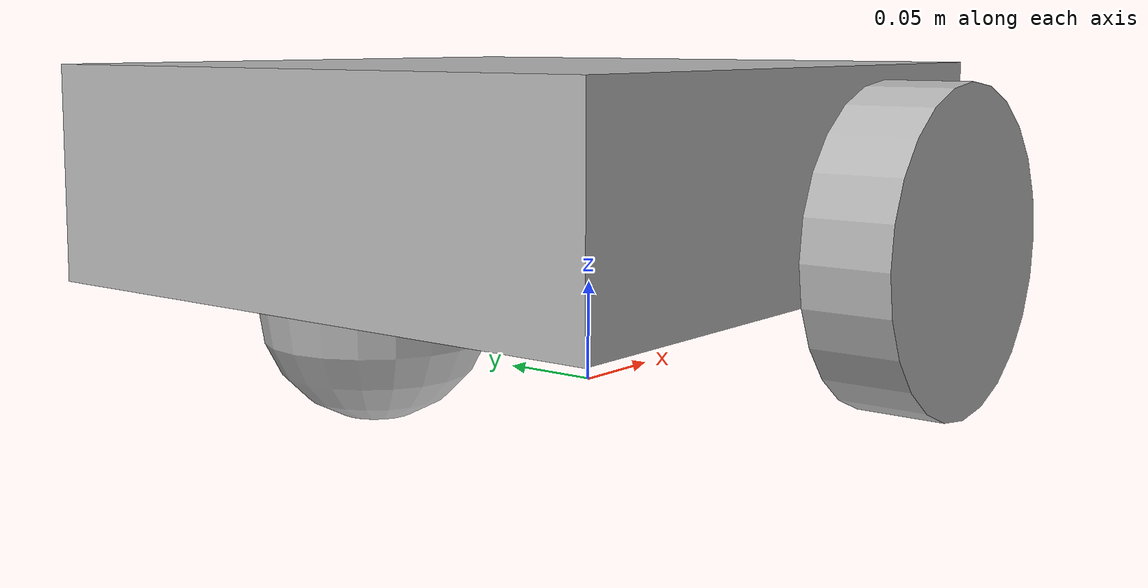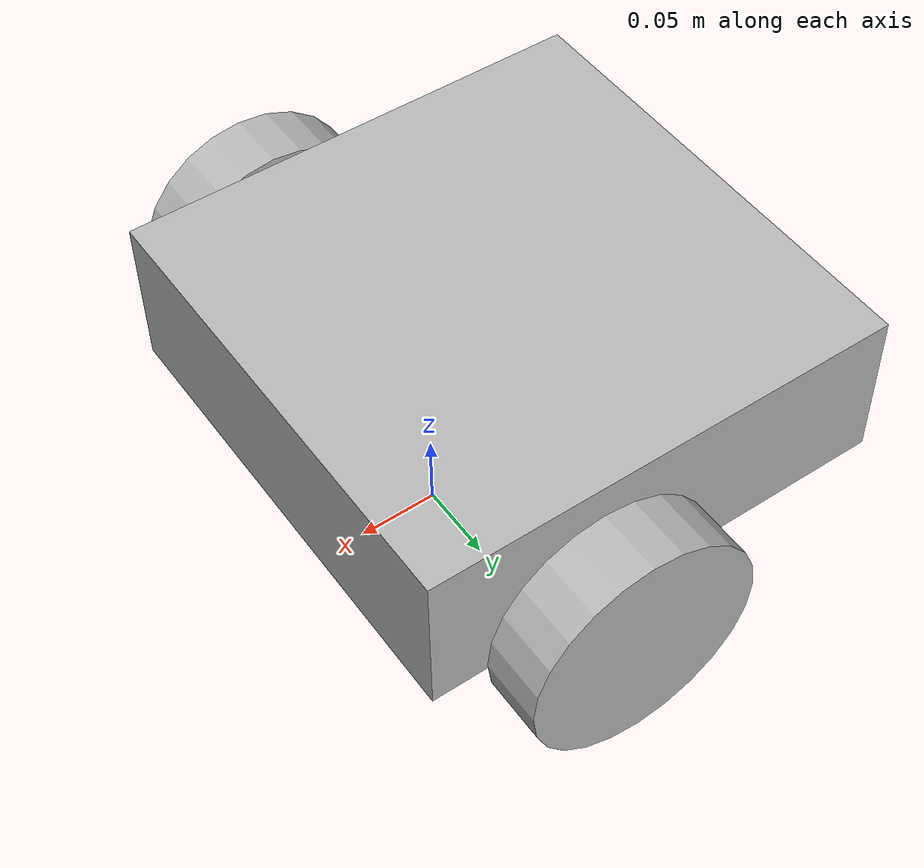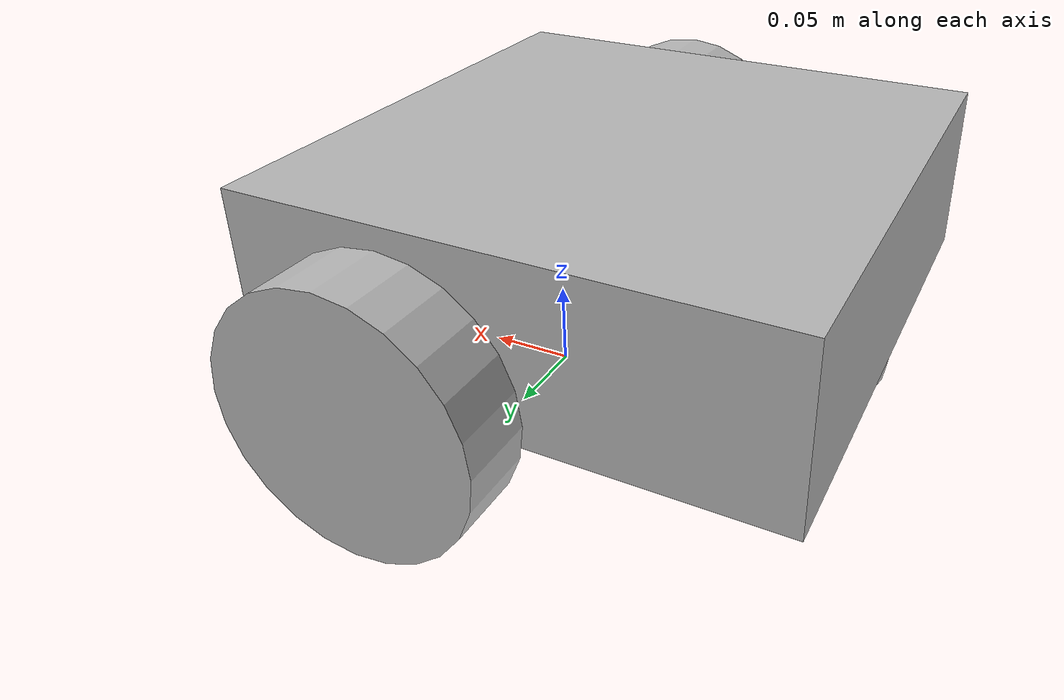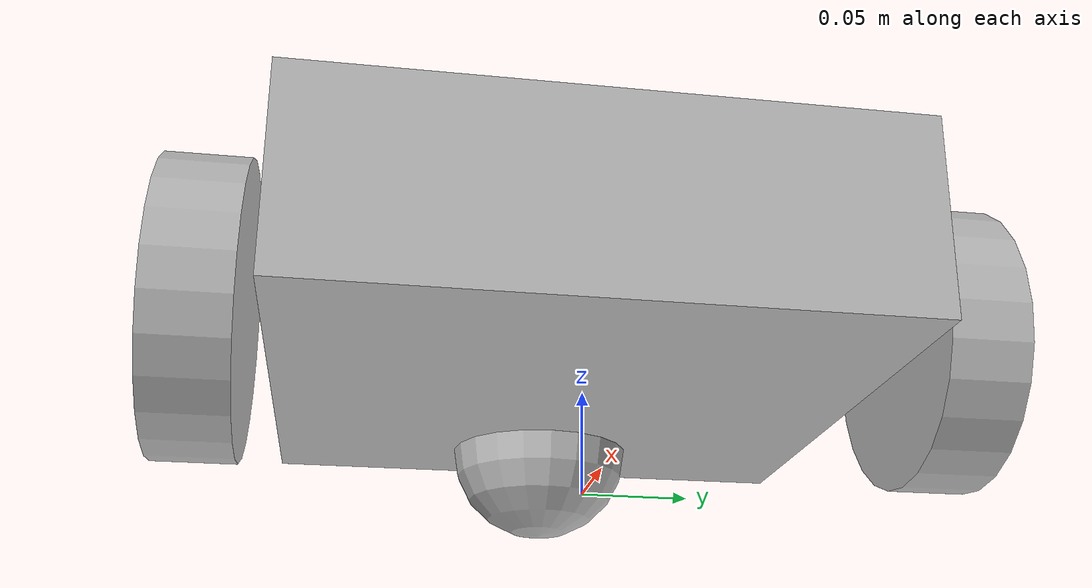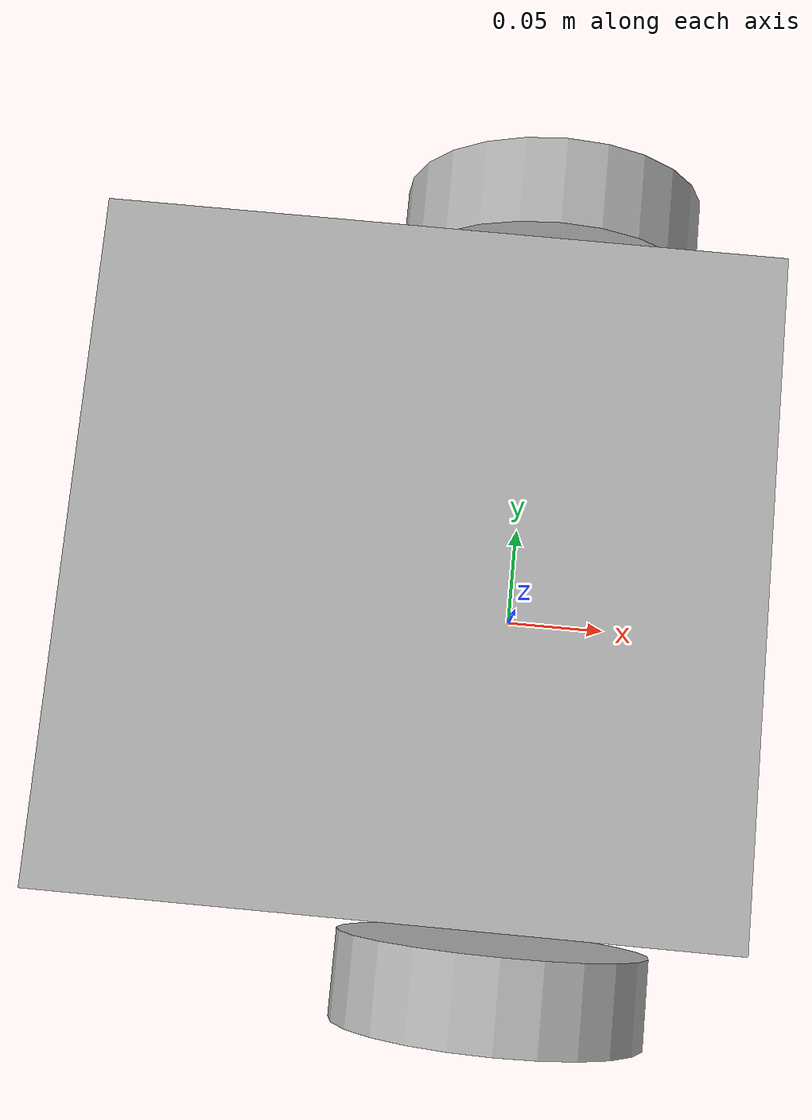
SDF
<sdf version='1.7'>
  <model name='etrobo_spike'>
    <link name='base_footprint'>
      <inertial>
        <pose>-0.051961 0 0.10902 0 -0 0</pose>
        <mass>5.1</mass>
        <inertia>
          <ixx>0.0422461</ixx>
          <ixy>0</ixy>
          <ixz>-0.000490196</ixz>
          <iyy>0.0432265</iyy>
          <iyz>0</iyz>
          <izz>0.0759814</izz>
        </inertia>
      </inertial>
      <collision name='base_footprint_fixed_joint_lump__base_link_collision'>
        <pose>-0.05 0 0.11 0 -0 0</pose>
        <geometry>
          <box>
            <size>0.3 0.3 0.1</size>
          </box>
        </geometry>
      </collision>
      <collision name='base_footprint_fixed_joint_lump__caster_back_link_collision_1'>
        <pose>-0.15 0 0.06 0 -0 0</pose>
        <geometry>
          <sphere>
            <radius>0.05</radius>
          </sphere>
        </geometry>
      </collision>
      <visual name='base_footprint_fixed_joint_lump__base_link_visual'>
        <pose>-0.05 0 0.11 0 -0 0</pose>
        <geometry>
          <box>
            <size>0.3 0.3 0.1</size>
          </box>
        </geometry>
      </visual>
      <visual name='base_footprint_fixed_joint_lump__caster_back_link_visual_1'>
        <pose>-0.15 0 0.06 0 -0 0</pose>
        <geometry>
          <sphere>
            <radius>0.05</radius>
          </sphere>
        </geometry>
      </visual>
    </link>
    <joint name='wheel_left_joint' type='revolute'>
      <pose relative_to='base_footprint'>0 0 0.01 0 -0 0</pose>
      <parent>base_footprint</parent>
      <child>wheel_left_link</child>
      <axis>
        <xyz>0 1 0</xyz>
        <limit>
          <lower>-1e+16</lower>
          <upper>1e+16</upper>
        </limit>
        <dynamics>
          <spring_reference>0</spring_reference>
          <spring_stiffness>0</spring_stiffness>
        </dynamics>
      </axis>
    </joint>
    <link name='wheel_left_link'>
      <pose relative_to='wheel_left_joint'>0 0 0 0 -0 0</pose>
      <inertial>
        <pose>0 0.18 0.072 1.5707 -0 0</pose>
        <mass>0.2</mass>
        <inertia>
          <ixx>0.00026</ixx>
          <ixy>0</ixy>
          <ixz>0</ixz>
          <iyy>0.00026</iyy>
          <iyz>0</iyz>
          <izz>0.00052</izz>
        </inertia>
      </inertial>
      <collision name='wheel_left_link_collision'>
        <pose>0 0.18 0.072 1.5707 -0 0</pose>
        <geometry>
          <cylinder>
            <length>0.04</length>
            <radius>0.072</radius>
          </cylinder>
        </geometry>
      </collision>
      <visual name='wheel_left_link_visual'>
        <pose>0 0.18 0.072 1.5707 -0 0</pose>
        <geometry>
          <cylinder>
            <length>0.04</length>
            <radius>0.072</radius>
          </cylinder>
        </geometry>
      </visual>
    </link>
    <joint name='wheel_right_joint' type='revolute'>
      <pose relative_to='base_footprint'>0 0 0.01 0 -0 0</pose>
      <parent>base_footprint</parent>
      <child>wheel_right_link</child>
      <axis>
        <xyz>0 1 0</xyz>
        <limit>
          <lower>-1e+16</lower>
          <upper>1e+16</upper>
        </limit>
        <dynamics>
          <spring_reference>0</spring_reference>
          <spring_stiffness>0</spring_stiffness>
        </dynamics>
      </axis>
    </joint>
    <link name='wheel_right_link'>
      <pose relative_to='wheel_right_joint'>0 0 0 0 -0 0</pose>
      <inertial>
        <pose>0 -0.18 0.072 1.5707 -0 0</pose>
        <mass>0.2</mass>
        <inertia>
          <ixx>0.00026</ixx>
          <ixy>0</ixy>
          <ixz>0</ixz>
          <iyy>0.00026</iyy>
          <iyz>0</iyz>
          <izz>0.00052</izz>
        </inertia>
      </inertial>
      <collision name='wheel_right_link_collision'>
        <pose>0 -0.18 0.072 1.5707 -0 0</pose>
        <geometry>
          <cylinder>
            <length>0.04</length>
            <radius>0.072</radius>
          </cylinder>
        </geometry>
      </collision>
      <visual name='wheel_right_link_visual'>
        <pose>0 -0.18 0.072 1.5707 -0 0</pose>
        <geometry>
          <cylinder>
            <length>0.04</length>
            <radius>0.072</radius>
          </cylinder>
        </geometry>
      </visual>
    </link>
  </model>
</sdf>
